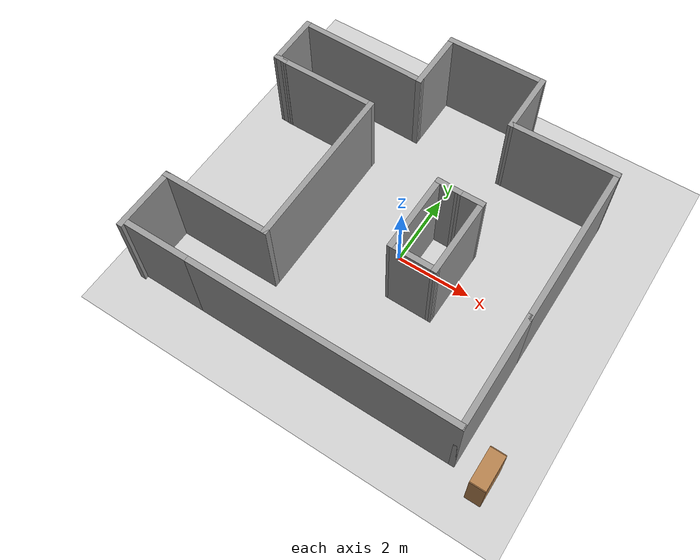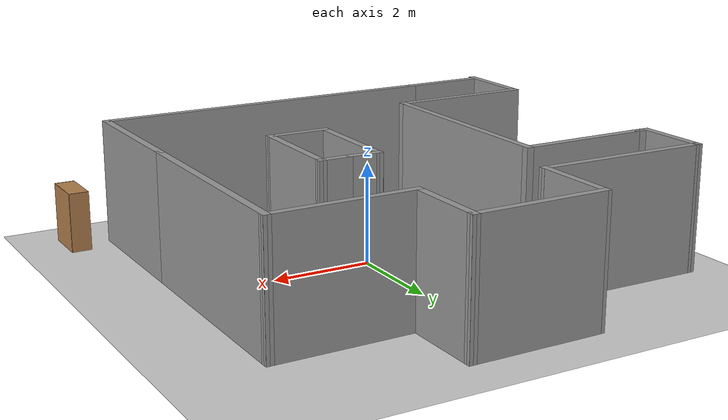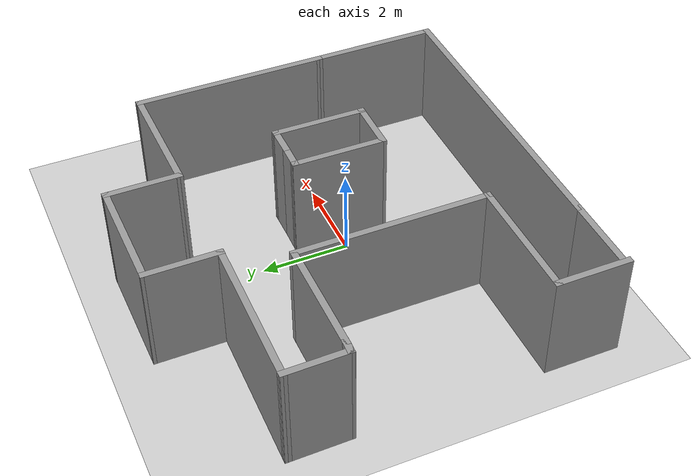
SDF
<sdf version="1.7">
 <world name="default">
  <light name="sun" type="directional">
   <pose>0 0 10 0 -0 0</pose>
   <diffuse>0.8 0.8 0.8 1</diffuse>
   <specular>0.1 0.1 0.1 1</specular>
   <attenuation>
    <range>1000</range>
    <constant>0.9</constant>
    <linear>0.01</linear>
    <quadratic>0.001</quadratic>
   </attenuation>
   <direction>-0.5 0.5 -1</direction>
   <spot><inner_angle>0</inner_angle><outer_angle>0</outer_angle><falloff>0</falloff></spot>
  </light>
  <model name="ground_plane">
   <static>1</static>
   <link name="link">
    <collision name="collision">
     <geometry><plane><normal>0 0 1</normal><size>100 100</size></plane></geometry>
     <surface><friction><ode><mu>100</mu><mu2>50</mu2></ode></friction></surface>
    </collision>
    <visual name="visual">
     <cast_shadows>0</cast_shadows>
     <geometry><plane><normal>0 0 1</normal><size>100 100</size></plane></geometry>
     <material>
      <script><uri>file://media/materials/scripts/gazebo.material</uri><name>Gazebo/Grey</name></script>
     </material>
    </visual>
   </link>
  </model>
  <gravity>0 0 -9.8</gravity>
  <magnetic_field>6e-06 2.3e-05 -4.2e-05</magnetic_field>
  <atmosphere type="adiabatic"/>
  <physics name="default_physics" default="0" type="ode">
   <max_step_size>0.001</max_step_size>
   <real_time_factor>1</real_time_factor>
   <real_time_update_rate>1000</real_time_update_rate>
  </physics>
  <scene><ambient>0.4 0.4 0.4 1</ambient><background>0.7 0.7 0.7 1</background><shadows>1</shadows></scene>
  <spherical_coordinates>
   <surface_model>EARTH_WGS84</surface_model>
   <latitude_deg>0</latitude_deg>
   <longitude_deg>0</longitude_deg>
   <elevation>0</elevation>
   <heading_deg>0</heading_deg>
  </spherical_coordinates>
  <model name="bookshelf">
   <static>1</static>
   <link name="link">
    <inertial><mass>1</mass></inertial>
    <collision name="back">
     <pose>0 0.005 0.6 0 -0 0</pose>
     <geometry><box><size>0.9 0.01 1.2</size></box></geometry>
    </collision>
    <visual name="visual1">
     <pose>0 0.005 0.6 0 -0 0</pose>
     <geometry><box><size>0.9 0.01 1.2</size></box></geometry>
     <material>
      <script><uri>file://media/materials/scripts/gazebo.material</uri><name>Gazebo/Wood</name></script>
     </material>
    </visual>
    <collision name="left_side">
     <pose>0.45 -0.195 0.6 0 -0 0</pose>
     <geometry><box><size>0.02 0.4 1.2</size></box></geometry>
    </collision>
    <visual name="visual2">
     <pose>0.45 -0.195 0.6 0 -0 0</pose>
     <geometry><box><size>0.02 0.4 1.2</size></box></geometry>
     <material>
      <script><uri>file://media/materials/scripts/gazebo.material</uri><name>Gazebo/Wood</name></script>
     </material>
    </visual>
    <collision name="right_side">
     <pose>-0.45 -0.195 0.6 0 -0 0</pose>
     <geometry><box><size>0.02 0.4 1.2</size></box></geometry>
    </collision>
    <visual name="visual3">
     <pose>-0.45 -0.195 0.6 0 -0 0</pose>
     <geometry><box><size>0.02 0.4 1.2</size></box></geometry>
     <material>
      <script><uri>file://media/materials/scripts/gazebo.material</uri><name>Gazebo/Wood</name></script>
     </material>
    </visual>
    <collision name="bottom">
     <pose>0 -0.195 0.03 0 -0 0</pose>
     <geometry><box><size>0.88 0.4 0.06</size></box></geometry>
    </collision>
    <visual name="visual4">
     <pose>0 -0.195 0.03 0 -0 0</pose>
     <geometry><box><size>0.88 0.4 0.06</size></box></geometry>
     <material>
      <script><uri>file://media/materials/scripts/gazebo.material</uri><name>Gazebo/Wood</name></script>
     </material>
    </visual>
    <collision name="top">
     <pose>0 -0.195 1.19 0 -0 0</pose>
     <geometry><box><size>0.88 0.4 0.02</size></box></geometry>
    </collision>
    <visual name="visual5">
     <pose>0 -0.195 1.19 0 -0 0</pose>
     <geometry><box><size>0.88 0.4 0.02</size></box></geometry>
     <material>
      <script><uri>file://media/materials/scripts/gazebo.material</uri><name>Gazebo/Wood</name></script>
     </material>
    </visual>
    <collision name="low_shelf">
     <pose>0 -0.195 0.43 0 -0 0</pose>
     <geometry><box><size>0.88 0.4 0.02</size></box></geometry>
    </collision>
    <visual name="visual6">
     <pose>0 -0.195 0.43 0 -0 0</pose>
     <geometry><box><size>0.88 0.4 0.02</size></box></geometry>
     <material>
      <script><uri>file://media/materials/scripts/gazebo.material</uri><name>Gazebo/Wood</name></script>
     </material>
    </visual>
    <collision name="high_shelf">
     <pose>0 -0.195 0.8 0 -0 0</pose>
     <geometry><box><size>0.88 0.4 0.02</size></box></geometry>
    </collision>
    <visual name="visual7">
     <pose>0 -0.195 0.8 0 -0 0</pose>
     <geometry><box><size>0.88 0.4 0.02</size></box></geometry>
     <material>
      <script><uri>file://media/materials/scripts/gazebo.material</uri><name>Gazebo/Wood</name></script>
     </material>
    </visual>
   </link>
   <pose>4.75971 -3.85961 0.022492 0 0 -1.57</pose>
  </model>
  <model name="walls_office">
   <pose>-0.634022 0.560522 0 0 -0 0</pose>
   <link name="Wall_10">
    <collision name="Wall_10_Collision">
     <geometry><box><size>3 0.15 2.5</size></box></geometry>
     <pose>0 0 1.25 0 -0 0</pose>
    </collision>
    <visual name="Wall_10_Visual">
     <pose>0 0 1.25 0 -0 0</pose>
     <geometry><box><size>3 0.15 2.5</size></box></geometry>
     <material>
      <script><uri>file://media/materials/scripts/gazebo.material</uri><name>Gazebo/Grey</name></script>
      <ambient>1 1 1 1</ambient>
      <diffuse>0 0 0 0</diffuse>
     </material>
     <meta><layer>0</layer></meta>
    </visual>
    <pose>4.41548 -2.92844 0 0 -0 1.5708</pose>
   </link>
   <link name="Wall_13">
    <collision name="Wall_13_Collision">
     <geometry><box><size>4.53001 0.15 2.5</size></box></geometry>
     <pose>0 0 1.25 0 -0 0</pose>
    </collision>
    <visual name="Wall_13_Visual">
     <pose>0 0 1.25 0 -0 0</pose>
     <geometry><box><size>4.53001 0.15 2.5</size></box></geometry>
     <material>
      <script><uri>file://media/materials/scripts/gazebo.material</uri><name>Gazebo/Grey</name></script>
      <ambient>1 1 1 1</ambient>
      <diffuse>0 0 0 0</diffuse>
     </material>
     <meta><layer>0</layer></meta>
    </visual>
    <pose>4.42048 0.686557 0 0 -0 1.56851</pose>
   </link>
   <link name="Wall_21">
    <collision name="Wall_21_Collision">
     <geometry><box><size>2.75 0.15 2.5</size></box></geometry>
     <pose>0 0 1.25 0 -0 0</pose>
    </collision>
    <visual name="Wall_21_Visual">
     <pose>0 0 1.25 0 -0 0</pose>
     <geometry><box><size>2.75 0.15 2.5</size></box></geometry>
     <material>
      <script><uri>file://media/materials/scripts/gazebo.material</uri><name>Gazebo/Grey</name></script>
      <ambient>1 1 1 1</ambient>
      <diffuse>0 0 0 0</diffuse>
     </material>
     <meta><layer>0</layer></meta>
    </visual>
    <pose>-2.87637 1.50617 0 0 -0 0</pose>
   </link>
   <link name="Wall_23">
    <collision name="Wall_23_Collision">
     <geometry><box><size>4.5 0.15 2.5</size></box></geometry>
     <pose>0 0 1.25 0 -0 0</pose>
    </collision>
    <visual name="Wall_23_Visual">
     <pose>0 0 1.25 0 -0 0</pose>
     <geometry><box><size>4.5 0.15 2.5</size></box></geometry>
     <material>
      <script><uri>file://media/materials/scripts/gazebo.material</uri><name>Gazebo/Grey</name></script>
      <ambient>1 1 1 1</ambient>
      <diffuse>0 0 0 0</diffuse>
     </material>
     <meta><layer>0</layer></meta>
    </visual>
    <pose>-1.57638 -0.668828 0 0 -0 -1.5708</pose>
   </link>
   <link name="Wall_24">
    <collision name="Wall_24_Collision">
     <geometry><box><size>3 0.15 2.5</size></box></geometry>
     <pose>0 0 1.25 0 -0 0</pose>
    </collision>
    <visual name="Wall_24_Visual">
     <pose>0 0 1.25 0 -0 0</pose>
     <geometry><box><size>3 0.15 2.5</size></box></geometry>
     <material>
      <script><uri>file://media/materials/scripts/gazebo.material</uri><name>Gazebo/Grey</name></script>
      <ambient>1 1 1 1</ambient>
      <diffuse>0 0 0 0</diffuse>
     </material>
     <meta><layer>0</layer></meta>
    </visual>
    <pose>-3.00137 -2.84383 0 0 -0 3.14159</pose>
   </link>
   <link name="Wall_26">
    <collision name="Wall_26_Collision">
     <geometry><box><size>1.75 0.15 2.5</size></box></geometry>
     <pose>0 0 1.25 0 -0 0</pose>
    </collision>
    <visual name="Wall_26_Visual">
     <pose>0 0 1.25 0 -0 0</pose>
     <geometry><box><size>1.75 0.15 2.5</size></box></geometry>
     <material>
      <script><uri>file://media/materials/scripts/gazebo.material</uri><name>Gazebo/Grey</name></script>
      <ambient>1 1 1 1</ambient>
      <diffuse>0 0 0 0</diffuse>
     </material>
     <meta><layer>0</layer></meta>
    </visual>
    <pose>-3.48452 -4.35344 0 0 -0 3.14159</pose>
   </link>
   <link name="Wall_28">
    <collision name="Wall_28_Collision">
     <geometry><box><size>1.75 0.15 2.5</size></box></geometry>
     <pose>0 0 1.25 0 -0 0</pose>
    </collision>
    <visual name="Wall_28_Visual">
     <pose>0 0 1.25 0 -0 0</pose>
     <geometry><box><size>1.75 0.15 2.5</size></box></geometry>
     <material>
      <script><uri>file://media/materials/scripts/gazebo.material</uri><name>Gazebo/Grey</name></script>
      <ambient>1 1 1 1</ambient>
      <diffuse>0 0 0 0</diffuse>
     </material>
     <meta><layer>0</layer></meta>
    </visual>
    <pose>-4.42638 -3.64383 0 0 -0 -1.5708</pose>
   </link>
   <link name="Wall_33">
    <collision name="Wall_33_Collision">
     <geometry><box><size>1.5 0.15 2.5</size></box></geometry>
     <pose>0 0 1.25 0 -0 0</pose>
    </collision>
    <visual name="Wall_33_Visual">
     <pose>0 0 1.25 0 -0 0</pose>
     <geometry><box><size>1.5 0.15 2.5</size></box></geometry>
     <material>
      <script><uri>file://media/materials/scripts/gazebo.material</uri><name>Gazebo/Grey</name></script>
      <ambient>1 1 1 1</ambient>
      <diffuse>0 0 0 0</diffuse>
     </material>
     <meta><layer>0</layer></meta>
    </visual>
    <pose>-4.41198 2.19228 0 0 -0 1.58184</pose>
   </link>
   <link name="Wall_36">
    <collision name="Wall_36_Collision">
     <geometry><box><size>0.378421 0.15 2.5</size></box></geometry>
     <pose>0 0 1.25 0 -0 0</pose>
    </collision>
    <visual name="Wall_36_Visual">
     <pose>0 0 1.25 0 -0 0</pose>
     <geometry><box><size>0.378421 0.15 2.5</size></box></geometry>
     <material>
      <script><uri>file://media/materials/scripts/gazebo.material</uri><name>Gazebo/Grey</name></script>
      <ambient>1 1 1 1</ambient>
      <diffuse>0 0 0 0</diffuse>
     </material>
     <meta><layer>0</layer></meta>
    </visual>
    <pose>-4.29045 1.51172 0 0 -0 -0.048633</pose>
   </link>
   <link name="Wall_46">
    <collision name="Wall_46_Collision">
     <geometry><box><size>1.75 0.15 2.5</size></box></geometry>
     <pose>0 0 1.25 0 -0 0</pose>
    </collision>
    <visual name="Wall_46_Visual">
     <pose>0 0 1.25 0 -0 0</pose>
     <geometry><box><size>1.75 0.15 2.5</size></box></geometry>
     <material>
      <script><uri>file://media/materials/scripts/gazebo.material</uri><name>Gazebo/Grey</name></script>
      <ambient>1 1 1 1</ambient>
      <diffuse>0 0 0 0</diffuse>
     </material>
     <meta><layer>0</layer></meta>
    </visual>
    <pose>-0.961876 3.62159 0 0 -0 -1.5708</pose>
   </link>
   <link name="Wall_48">
    <collision name="Wall_48_Collision">
     <geometry><box><size>1.75 0.15 2.5</size></box></geometry>
     <pose>0 0 1.25 0 -0 0</pose>
    </collision>
    <visual name="Wall_48_Visual">
     <pose>0 0 1.25 0 -0 0</pose>
     <geometry><box><size>1.75 0.15 2.5</size></box></geometry>
     <material>
      <script><uri>file://media/materials/scripts/gazebo.material</uri><name>Gazebo/Grey</name></script>
      <ambient>1 1 1 1</ambient>
      <diffuse>0 0 0 0</diffuse>
     </material>
     <meta><layer>0</layer></meta>
    </visual>
    <pose>1.63652 3.64321 0 0 -0 -1.5708</pose>
   </link>
   <link name="Wall_50">
    <collision name="Wall_50_Collision">
     <geometry><box><size>3.60798 0.15 2.5</size></box></geometry>
     <pose>0 0 1.25 0 -0 0</pose>
    </collision>
    <visual name="Wall_50_Visual">
     <pose>0 0 1.25 0 -0 0</pose>
     <geometry><box><size>3.60798 0.15 2.5</size></box></geometry>
     <material>
      <script><uri>file://media/materials/scripts/gazebo.material</uri><name>Gazebo/Grey</name></script>
      <ambient>1 1 1 1</ambient>
      <diffuse>0 0 0 0</diffuse>
     </material>
     <meta><layer>0</layer></meta>
    </visual>
    <pose>-2.69066 2.8466 0 0 -0 -0.011963</pose>
   </link>
   <link name="Wall_52">
    <collision name="Wall_52_Collision">
     <geometry><box><size>2.93916 0.15 2.5</size></box></geometry>
     <pose>0 0 1.25 0 -0 0</pose>
    </collision>
    <visual name="Wall_52_Visual">
     <pose>0 0 1.25 0 -0 0</pose>
     <geometry><box><size>2.93916 0.15 2.5</size></box></geometry>
     <material>
      <script><uri>file://media/materials/scripts/gazebo.material</uri><name>Gazebo/Grey</name></script>
      <ambient>1 1 1 1</ambient>
      <diffuse>0 0 0 0</diffuse>
     </material>
     <meta><layer>0</layer></meta>
    </visual>
    <pose>3.031 2.85988 0 0 -0 0.011957</pose>
   </link>
   <link name="Wall_56">
    <collision name="Wall_56_Collision">
     <geometry><box><size>2.74849 0.15 2.5</size></box></geometry>
     <pose>0 0 1.25 0 -0 0</pose>
    </collision>
    <visual name="Wall_56_Visual">
     <pose>0 0 1.25 0 -0 0</pose>
     <geometry><box><size>2.74849 0.15 2.5</size></box></geometry>
     <material>
      <script><uri>file://media/materials/scripts/gazebo.material</uri><name>Gazebo/Grey</name></script>
      <ambient>1 1 1 1</ambient>
      <diffuse>0 0 0 0</diffuse>
     </material>
     <meta><layer>0</layer></meta>
    </visual>
    <pose>0.337323 4.4324 0 0 -0 0.008319</pose>
   </link>
   <link name="Wall_58">
    <collision name="Wall_58_Collision">
     <geometry><box><size>0.75 0.15 2.5</size></box></geometry>
     <pose>0 0 1.25 0 -0 0</pose>
    </collision>
    <visual name="Wall_58_Visual">
     <pose>0 0 1.25 0 -0 0</pose>
     <geometry><box><size>0.75 0.15 2.5</size></box></geometry>
     <material>
      <script><uri>file://media/materials/scripts/gazebo.material</uri><name>Gazebo/Grey</name></script>
      <ambient>1 1 1 1</ambient>
      <diffuse>0 0 0 0</diffuse>
     </material>
     <meta><layer>0</layer></meta>
    </visual>
    <pose>1.85765 0.448101 0 0 -0 0</pose>
   </link>
   <link name="Wall_6">
    <collision name="Wall_6_Collision">
     <geometry><box><size>7.25 0.15 2.5</size></box></geometry>
     <pose>0 0 1.25 0 -0 0</pose>
    </collision>
    <visual name="Wall_6_Visual">
     <pose>0 0 1.25 0 -0 0</pose>
     <geometry><box><size>7.25 0.15 2.5</size></box></geometry>
     <material>
      <script><uri>file://media/materials/scripts/gazebo.material</uri><name>Gazebo/Grey</name></script>
      <ambient>1 1 1 1</ambient>
      <diffuse>0 0 0 0</diffuse>
     </material>
     <meta><layer>0</layer></meta>
    </visual>
    <pose>0.865484 -4.35344 0 0 -0 0</pose>
   </link>
   <link name="Wall_60">
    <collision name="Wall_60_Collision">
     <geometry><box><size>2.20474 0.15 2.5</size></box></geometry>
     <pose>0 0 1.25 0 -0 0</pose>
    </collision>
    <visual name="Wall_60_Visual">
     <pose>0 0 1.25 0 -0 0</pose>
     <geometry><box><size>2.20474 0.15 2.5</size></box></geometry>
     <material>
      <script><uri>file://media/materials/scripts/gazebo.material</uri><name>Gazebo/Grey</name></script>
      <ambient>1 1 1 1</ambient>
      <diffuse>0 0 0 0</diffuse>
     </material>
     <meta><layer>0</layer></meta>
    </visual>
    <pose>2.14913 -0.579233 0 0 -0 -1.5791</pose>
   </link>
   <link name="Wall_61">
    <collision name="Wall_61_Collision">
     <geometry><box><size>1.30122 0.15 2.5</size></box></geometry>
     <pose>0 0 1.25 0 -0 0</pose>
    </collision>
    <visual name="Wall_61_Visual">
     <pose>0 0 1.25 0 -0 0</pose>
     <geometry><box><size>1.30122 0.15 2.5</size></box></geometry>
     <material>
      <script><uri>file://media/materials/scripts/gazebo.material</uri><name>Gazebo/Grey</name></script>
      <ambient>1 1 1 1</ambient>
      <diffuse>0 0 0 0</diffuse>
     </material>
     <meta><layer>0</layer></meta>
    </visual>
    <pose>1.56501 -1.60088 0 0 -0 3.13172</pose>
   </link>
   <link name="Wall_62">
    <collision name="Wall_62_Collision">
     <geometry><box><size>2.2047 0.15 2.5</size></box></geometry>
     <pose>0 0 1.25 0 -0 0</pose>
    </collision>
    <visual name="Wall_62_Visual">
     <pose>0 0 1.25 0 -0 0</pose>
     <geometry><box><size>2.2047 0.15 2.5</size></box></geometry>
     <material>
      <script><uri>file://media/materials/scripts/gazebo.material</uri><name>Gazebo/Grey</name></script>
      <ambient>1 1 1 1</ambient>
      <diffuse>0 0 0 0</diffuse>
     </material>
     <meta><layer>0</layer></meta>
    </visual>
    <pose>0.995116 -0.567863 0 0 -0 1.56526</pose>
   </link>
   <link name="Wall_63">
    <collision name="Wall_63_Collision">
     <geometry><box><size>0.701285 0.15 2.5</size></box></geometry>
     <pose>0 0 1.25 0 -0 0</pose>
    </collision>
    <visual name="Wall_63_Visual">
     <pose>0 0 1.25 0 -0 0</pose>
     <geometry><box><size>0.701285 0.15 2.5</size></box></geometry>
     <material>
      <script><uri>file://media/materials/scripts/gazebo.material</uri><name>Gazebo/Grey</name></script>
      <ambient>1 1 1 1</ambient>
      <diffuse>0 0 0 0</diffuse>
     </material>
     <meta><layer>0</layer></meta>
    </visual>
    <pose>1.28207 0.453786 0 0 -0 -0.020627</pose>
   </link>
   <static>1</static>
  </model>
 </world>
</sdf>
